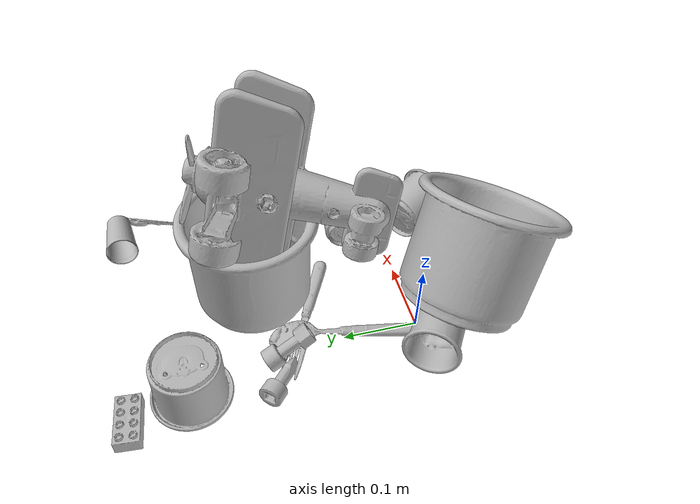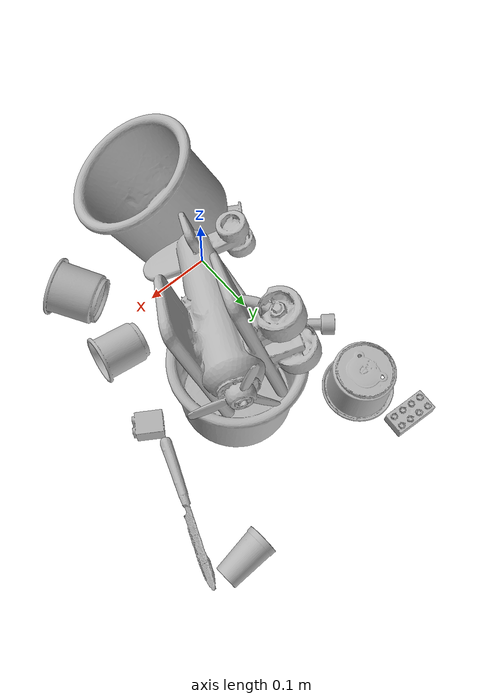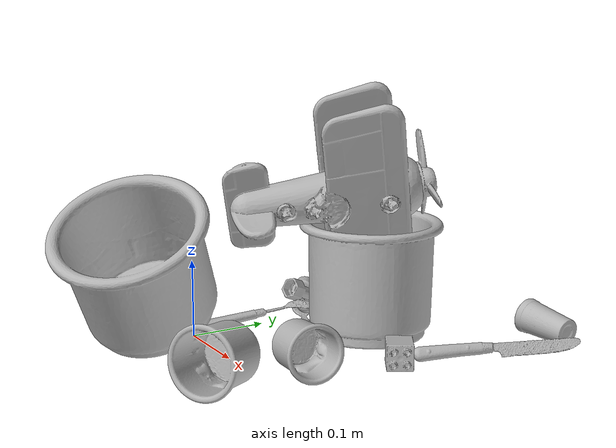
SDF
<sdf version="1.4">
  <world name="default">
    <light name="light1" type="point">
      <pose>0 0 1 0 0 0</pose>
      <diffuse>3 3 3 1</diffuse>
      <specular>3 3 3 1</specular>
    </light>
    <light name="light2" type="point">
      <pose>0 0.5 2 0 0 0</pose>
      <diffuse>1 1 1 1</diffuse>
      <specular>1 1 1 1</specular>
    </light>
    <light name="light3" type="point">
      <pose>0 0.5 2 0 0 0</pose>
      <diffuse>3 3 3 1</diffuse>
      <specular>3 3 3 1</specular>
    </light>
    <scene>
      <ambient>0.7 0.7 0.7</ambient>
    </scene>
    <model name="cup1">
      <link name="link_cup1">
        <collision name="default">
          <geometry>
            <mesh>
              <uri>model://d_cups/collision_meshes/collision.obj</uri>
              <scale>1.0 1.0 1.0</scale>
            </mesh>
          </geometry>
          <surface>
            <friction>
              <ode>
                <mu>0.5</mu>
                <mu2>0.5</mu2>
              </ode>
            </friction>
          <contact>
        <ode>
            <max_vel>0</max_vel>
            <min_depth>0.0001</min_depth>
            <kp>1e8</kp>
        </ode>
    </contact></surface>
        </collision>
        <visual name="default">
          <geometry>
            <mesh>
              <uri>model://d_cups/visual_meshes/visual.dae</uri>
              <scale>1.0 1.0 1.0</scale>
            </mesh>
          </geometry>
        </visual>
        <inertial>
          <mass>0.02583918906748295</mass>
          <pose>0.0008068039314821362 0.001911739120259881 -0.0022666507866233587 0.24011637128749466 -0.2471028358176743 0.5942765290496752</pose>
          <inertia>
            <ixx>2.1633481e-05</ixx>
            <iyy>2.1570875e-05</iyy>
            <izz>1.9581978e-05</izz>
            <ixy>0</ixy>
            <ixz>0</ixz>
            <iyz>0</iyz>
          </inertia>
        </inertial>
      </link>
      <pose>0.19284497201442719 0.05004005506634712 0.03246481716632843 -1.4725912006257997 0.45996634494934435 -1.6507713644012336</pose>
    </model>
    <model name="silverware1">
      <link name="link_silverware1">
        <collision name="default">
          <geometry>
            <mesh>
              <uri>model://fork/collision_meshes/collision.obj</uri>
              <scale>1.0 1.0 1.0</scale>
            </mesh>
          </geometry>
          <surface>
            <friction>
              <ode>
                <mu>0.5</mu>
                <mu2>0.5</mu2>
              </ode>
            </friction>
          <contact>
        <ode>
            <max_vel>0</max_vel>
            <min_depth>0.0001</min_depth>
            <kp>1e8</kp>
        </ode>
    </contact></surface>
        </collision>
        <visual name="default">
          <geometry>
            <mesh>
              <uri>model://fork/visual_meshes/visual.dae</uri>
              <scale>1.0 1.0 1.0</scale>
            </mesh>
          </geometry>
        </visual>
        <inertial>
          <mass>0.019409121945500374</mass>
          <pose>-0.02957003004848957 0.00046588227269239724 0.0003218860365450382 -0.013551247621251511 -0.010977829980421018 0.014453895491116085</pose>
          <inertia>
            <ixx>6.8039935e-07</ixx>
            <iyy>5.0671635e-05</iyy>
            <izz>5.097597e-05</izz>
            <ixy>0</ixy>
            <ixz>0</ixz>
            <iyz>0</iyz>
          </inertia>
        </inertial>
      </link>
      <pose>0.044082701206207275 0.14217828214168549 0.007446238771080971 -3.0641744674755182 0.0027995954546851816 2.688582010837622</pose>
    </model>
    <model name="cup2">
      <link name="link_cup2">
        <collision name="default">
          <geometry>
            <mesh>
              <uri>model://e_cups/collision_meshes/collision.obj</uri>
              <scale>1.0 1.0 1.0</scale>
            </mesh>
          </geometry>
          <surface>
            <friction>
              <ode>
                <mu>0.5</mu>
                <mu2>0.5</mu2>
              </ode>
            </friction>
          <contact>
        <ode>
            <max_vel>0</max_vel>
            <min_depth>0.0001</min_depth>
            <kp>1e8</kp>
        </ode>
    </contact></surface>
        </collision>
        <visual name="default">
          <geometry>
            <mesh>
              <uri>model://e_cups/visual_meshes/visual.dae</uri>
              <scale>1.0 1.0 1.0</scale>
            </mesh>
          </geometry>
        </visual>
        <inertial>
          <mass>0.044056184589862823</mass>
          <pose>0.0011355748865753412 0.0028797839768230915 -0.0038829699624329805 0.6952404811842238 0.0876797234541652 -0.5235249298074676</pose>
          <inertia>
            <ixx>3.8846523e-05</ixx>
            <iyy>4.060018e-05</iyy>
            <izz>3.714177e-05</izz>
            <ixy>0</ixy>
            <ixz>0</ixz>
            <iyz>0</iyz>
          </inertia>
        </inertial>
      </link>
      <pose>-0.04573681578040123 -0.009021404199302197 0.03495083004236221 -1.1342371935651374 1.3562522821534169 1.4079590836160691</pose>
    </model>
    <model name="silverware2">
      <link name="link_silverware2">
        <collision name="default">
          <geometry>
            <mesh>
              <uri>model://knife/collision_meshes/collision.obj</uri>
              <scale>1.0 1.0 1.0</scale>
            </mesh>
          </geometry>
          <surface>
            <friction>
              <ode>
                <mu>0.5</mu>
                <mu2>0.5</mu2>
              </ode>
            </friction>
          <contact>
        <ode>
            <max_vel>0</max_vel>
            <min_depth>0.0001</min_depth>
            <kp>1e8</kp>
        </ode>
    </contact></surface>
        </collision>
        <visual name="default">
          <geometry>
            <mesh>
              <uri>model://knife/visual_meshes/visual.dae</uri>
              <scale>1.0 1.0 1.0</scale>
            </mesh>
          </geometry>
        </visual>
        <inertial>
          <mass>0.018338654190301895</mass>
          <pose>-0.02378525212407112 0.00152751209679991 5.062017953605391e-05 0.07305878484845407 0.017248414361503102 -0.007409825003193847</pose>
          <inertia>
            <ixx>5.2052525e-07</ixx>
            <iyy>7.045415e-05</iyy>
            <izz>7.062178e-05</izz>
            <ixy>0</ixy>
            <ixz>0</ixz>
            <iyz>0</iyz>
          </inertia>
        </inertial>
      </link>
      <pose>0.2605878710746765 0.285221129655838 0.008410957641899586 0.9011111339972787 -0.010236267915574164 1.2012889031997314</pose>
    </model>
    <model name="cup3">
      <link name="link_cup3">
        <collision name="default">
          <geometry>
            <mesh>
              <uri>model://g_cups/collision_meshes/collision.obj</uri>
              <scale>1.0 1.0 1.0</scale>
            </mesh>
          </geometry>
          <surface>
            <friction>
              <ode>
                <mu>0.5</mu>
                <mu2>0.5</mu2>
              </ode>
            </friction>
          <contact>
        <ode>
            <max_vel>0</max_vel>
            <min_depth>0.0001</min_depth>
            <kp>1e8</kp>
        </ode>
    </contact></surface>
        </collision>
        <visual name="default">
          <geometry>
            <mesh>
              <uri>model://g_cups/visual_meshes/visual.dae</uri>
              <scale>1.0 1.0 1.0</scale>
            </mesh>
          </geometry>
        </visual>
        <inertial>
          <mass>0.07798270881175995</mass>
          <pose>-0.0007946274126879871 -4.206407902529463e-05 -0.0021329382434487343 -0.21383467808934026 -0.31409923984197585 0.31123390815877217</pose>
          <inertia>
            <ixx>9.102333e-05</ixx>
            <iyy>9.0713715e-05</iyy>
            <izz>9.428446e-05</izz>
            <ixy>0</ixy>
            <ixz>0</ixz>
            <iyz>0</iyz>
          </inertia>
        </inertial>
      </link>
      <pose>0.1868080049753189 -0.058096397668123245 0.03984779492020607 -0.9290708831182399 -1.3955844472314036 3.072186716912401</pose>
    </model>
    <model name="silverware3">
      <link name="link_silverware3">
        <collision name="default">
          <geometry>
            <mesh>
              <uri>model://spoon/collision_meshes/collision.obj</uri>
              <scale>1.0 1.0 1.0</scale>
            </mesh>
          </geometry>
          <surface>
            <friction>
              <ode>
                <mu>0.5</mu>
                <mu2>0.5</mu2>
              </ode>
            </friction>
          <contact>
        <ode>
            <max_vel>0</max_vel>
            <min_depth>0.0001</min_depth>
            <kp>1e8</kp>
        </ode>
    </contact></surface>
        </collision>
        <visual name="default">
          <geometry>
            <mesh>
              <uri>model://spoon/visual_meshes/visual.dae</uri>
              <scale>1.0 1.0 1.0</scale>
            </mesh>
          </geometry>
        </visual>
        <inertial>
          <mass>0.03767607361078262</mass>
          <pose>-0.005526314023882151 -0.00160341733135283 -0.0007271650829352438 0.035216427360727776 -0.03906582911385382 0.006150613897789847</pose>
          <inertia>
            <ixx>2.095604e-06</ixx>
            <iyy>0.00014335623</iyy>
            <izz>0.00014438969</izz>
            <ixy>0</ixy>
            <ixz>0</ixz>
            <iyz>0</iyz>
          </inertia>
        </inertial>
      </link>
      <pose>0.00219451985321939 0.10263587534427643 0.012708013877272606 3.09637484218974 -0.09002945027949363 1.435232481163786</pose>
    </model>
    <model name="cup4">
      <link name="link_cup4">
        <collision name="default">
          <geometry>
            <mesh>
              <uri>model://i_cups/collision_meshes/collision.obj</uri>
              <scale>2.0 2.0 2.0</scale>
            </mesh>
          </geometry>
          <surface>
            <friction>
              <ode>
                <mu>0.5</mu>
                <mu2>0.5</mu2>
              </ode>
            </friction>
          <contact>
        <ode>
            <max_vel>0</max_vel>
            <min_depth>0.0001</min_depth>
            <kp>1e8</kp>
        </ode>
    </contact></surface>
        </collision>
        <visual name="default">
          <geometry>
            <mesh>
              <uri>model://i_cups/visual_meshes/visual.dae</uri>
              <scale>2.0 2.0 2.0</scale>
            </mesh>
          </geometry>
        </visual>
        <inertial>
          <mass>0.5538490414619446</mass>
          <pose>0.00022480632469523698 0.00033594807609915733 -0.0017158057307824492 -0.028982964625507153 -0.039873324075769 -0.3459146585522926</pose>
          <inertia>
            <ixx>0.003067248</ixx>
            <iyy>0.003094273</iyy>
            <izz>0.0034281453</izz>
            <ixy>0</ixy>
            <ixz>0</ixz>
            <iyz>0</iyz>
          </inertia>
        </inertial>
      </link>
      <pose>0.018026268109679222 -0.07648338377475739 0.10166434198617935 0.47979749630349633 -0.2162349199642782 1.1334081734131785</pose>
    </model>
    <model name="cup41">
      <link name="link_cup41">
        <collision name="default">
          <geometry>
            <mesh>
              <uri>model://cup_small/collision_meshes/collision.obj</uri>
              <scale>1.0 1.0 1.0</scale>
            </mesh>
          </geometry>
          <surface>
            <friction>
              <ode>
                <mu>0.5</mu>
                <mu2>0.5</mu2>
              </ode>
            </friction>
          <contact>
        <ode>
            <max_vel>0</max_vel>
            <min_depth>0.0001</min_depth>
            <kp>1e8</kp>
        </ode>
    </contact></surface>
        </collision>
        <visual name="default">
          <geometry>
            <mesh>
              <uri>model://cup_small/visual_meshes/visual.dae</uri>
              <scale>1.0 1.0 1.0</scale>
            </mesh>
          </geometry>
        </visual>
        <inertial>
          <mass>0.014494861476123333</mass>
          <pose>0.000104824714071583 -0.0003377838584128767 -0.010742826387286186 -0.01149312034772668 -0.015280288652376739 -0.5058210166411498</pose>
          <inertia>
            <ixx>8.534352e-06</ixx>
            <iyy>8.578376e-06</iyy>
            <izz>3.853286e-06</izz>
            <ixy>0</ixy>
            <ixz>0</ixz>
            <iyz>0</iyz>
          </inertia>
        </inertial>
      </link>
      <pose>0.2433362752199173 0.3817695379257202 0.019850632175803185 -1.4787934197550325 -0.29150203578495226 1.6252223862628825</pose>
    </model>
    <model name="cup5">
      <link name="link_cup5">
        <collision name="default">
          <geometry>
            <mesh>
              <uri>model://h_cups/collision_meshes/collision.obj</uri>
              <scale>2.0 2.0 2.0</scale>
            </mesh>
          </geometry>
          <surface>
            <friction>
              <ode>
                <mu>0.5</mu>
                <mu2>0.5</mu2>
              </ode>
            </friction>
          <contact>
        <ode>
            <max_vel>0</max_vel>
            <min_depth>0.0001</min_depth>
            <kp>1e8</kp>
        </ode>
    </contact></surface>
        </collision>
        <visual name="default">
          <geometry>
            <mesh>
              <uri>model://h_cups/visual_meshes/visual.dae</uri>
              <scale>2.0 2.0 2.0</scale>
            </mesh>
          </geometry>
        </visual>
        <inertial>
          <mass>0.5365790128707886</mass>
          <pose>-5.406028139987029e-05 0.00046037189895287156 -0.0036810787860304117 -0.02436222281077587 0.06545240855648493 0.12885003891433794</pose>
          <inertia>
            <ixx>0.002771868</ixx>
            <iyy>0.0027387904</iyy>
            <izz>0.0029069292</izz>
            <ixy>0</ixy>
            <ixz>0</ixz>
            <iyz>0</iyz>
          </inertia>
        </inertial>
      </link>
      <pose>0.10465098917484283 0.20305652916431427 0.0755201056599617 0.00010390836142231411 -9.331201529589868e-06 1.4032554315963457</pose>
    </model>
    <model name="cup51">
      <link name="link_cup51">
        <collision name="default">
          <geometry>
            <mesh>
              <uri>model://j_cups/collision_meshes/collision.obj</uri>
              <scale>1.0 1.0 1.0</scale>
            </mesh>
          </geometry>
          <surface>
            <friction>
              <ode>
                <mu>0.5</mu>
                <mu2>0.5</mu2>
              </ode>
            </friction>
          <contact>
        <ode>
            <max_vel>0</max_vel>
            <min_depth>0.0001</min_depth>
            <kp>1e8</kp>
        </ode>
    </contact></surface>
        </collision>
        <visual name="default">
          <geometry>
            <mesh>
              <uri>model://j_cups/visual_meshes/visual.dae</uri>
              <scale>1.0 1.0 1.0</scale>
            </mesh>
          </geometry>
        </visual>
        <inertial>
          <mass>0.08643309026956558</mass>
          <pose>0.0006164878141134977 0.000539897009730339 -0.0013479007175192237 0.030303582878034346 0.03757999590477698 0.4386876701083768</pose>
          <inertia>
            <ixx>0.00012691108</ixx>
            <iyy>0.00012823076</iyy>
            <izz>0.00014630218</izz>
            <ixy>0</ixy>
            <ixz>0</ixz>
            <iyz>0</iyz>
          </inertia>
        </inertial>
      </link>
      <pose>-0.03770799562335014 0.30502691864967346 0.0379977785050869 -3.139854856125243 0.006371811609458145 1.4302749411431372</pose>
    </model>
    <model name="toy1">
      <link name="link_toy1">
        <collision name="default">
          <geometry>
            <mesh>
              <uri>model://f_lego_duplo/collision_meshes/collision.obj</uri>
              <scale>1.0 1.0 1.0</scale>
            </mesh>
          </geometry>
          <surface>
            <friction>
              <ode>
                <mu>0.5</mu>
                <mu2>0.5</mu2>
              </ode>
            </friction>
          <contact>
        <ode>
            <max_vel>0</max_vel>
            <min_depth>0.0001</min_depth>
            <kp>1e8</kp>
        </ode>
    </contact></surface>
        </collision>
        <visual name="default">
          <geometry>
            <mesh>
              <uri>model://f_lego_duplo/visual_meshes/visual.dae</uri>
              <scale>1.0 1.0 1.0</scale>
            </mesh>
          </geometry>
        </visual>
        <inertial>
          <mass>0.03726755082607269</mass>
          <pose>2.3694148694630712e-05 0.00013393144763540477 0.0018837880343198776 0.029838475432906467 -0.014425202105620092 -0.6756589304715467</pose>
          <inertia>
            <ixx>7.874838e-06</ixx>
            <iyy>7.944995e-06</iyy>
            <izz>6.8356926e-06</izz>
            <ixy>0</ixy>
            <ixz>0</ixz>
            <iyz>0</iyz>
          </inertia>
        </inertial>
      </link>
      <pose>0.22861172258853912 0.15979862213134766 0.016202902421355247 1.6846399029020627 1.5707523854111967 1.1126268575606157</pose>
    </model>
    <model name="toy2">
      <link name="link_toy2">
        <collision name="default">
          <geometry>
            <mesh>
              <uri>model://a_toy_airplane/collision_meshes/collision.obj</uri>
              <scale>1.0 1.0 1.0</scale>
            </mesh>
          </geometry>
          <surface>
            <friction>
              <ode>
                <mu>0.5</mu>
                <mu2>0.5</mu2>
              </ode>
            </friction>
          <contact>
        <ode>
            <max_vel>0</max_vel>
            <min_depth>0.0001</min_depth>
            <kp>1e8</kp>
        </ode>
    </contact></surface>
        </collision>
        <visual name="default">
          <geometry>
            <mesh>
              <uri>model://a_toy_airplane/visual_meshes/visual.dae</uri>
              <scale>1.0 1.0 1.0</scale>
            </mesh>
          </geometry>
        </visual>
        <inertial>
          <mass>2.8230273723602295</mass>
          <pose>0.025165094062685966 -0.003707324154675007 -0.0011962448479607701 -0.012016973205606891 -0.14663498091084715 0.004149146833454428</pose>
          <inertia>
            <ixx>0.010251767</ixx>
            <iyy>0.014938904</iyy>
            <izz>0.017491622</izz>
            <ixy>0</ixy>
            <ixz>0</ixz>
            <iyz>0</iyz>
          </inertia>
        </inertial>
      </link>
      <pose>0.0937383770942688 0.14794659614562988 0.1893801987171173 1.7998259791620572 -0.17599418381462428 1.3154819840908323</pose>
    </model>
    <model name="toy3">
      <link name="link_toy3">
        <collision name="default">
          <geometry>
            <mesh>
              <uri>model://e_toy_airplane/collision_meshes/collision.obj</uri>
              <scale>1.0 1.0 1.0</scale>
            </mesh>
          </geometry>
          <surface>
            <friction>
              <ode>
                <mu>0.5</mu>
                <mu2>0.5</mu2>
              </ode>
            </friction>
          <contact>
        <ode>
            <max_vel>0</max_vel>
            <min_depth>0.0001</min_depth>
            <kp>1e8</kp>
        </ode>
    </contact></surface>
        </collision>
        <visual name="default">
          <geometry>
            <mesh>
              <uri>model://e_toy_airplane/visual_meshes/visual.dae</uri>
              <scale>1.0 1.0 1.0</scale>
            </mesh>
          </geometry>
        </visual>
        <inertial>
          <mass>0.018226178362965584</mass>
          <pose>0.00011740501213353127 -2.2482903659692965e-05 -0.011187204159796238 0.005518473613481416 0.009228340672948143 0.1504115676354622</pose>
          <inertia>
            <ixx>5.5628384e-06</ixx>
            <iyy>5.505933e-06</iyy>
            <izz>1.6718515e-06</izz>
            <ixy>0</ixy>
            <ixz>0</ixz>
            <iyz>0</iyz>
          </inertia>
        </inertial>
      </link>
      <pose>-0.05086467042565346 0.19258780777454376 0.014332378283143044 1.628346024808428 0.3856811236363285 0.8662193699196328</pose>
    </model>
    <model name="toy4">
      <link name="link_toy4">
        <collision name="default">
          <geometry>
            <mesh>
              <uri>model://c_toy_airplane/collision_meshes/collision.obj</uri>
              <scale>1.0 1.0 1.0</scale>
            </mesh>
          </geometry>
          <surface>
            <friction>
              <ode>
                <mu>0.5</mu>
                <mu2>0.5</mu2>
              </ode>
            </friction>
          <contact>
        <ode>
            <max_vel>0</max_vel>
            <min_depth>0.0001</min_depth>
            <kp>1e8</kp>
        </ode>
    </contact></surface>
        </collision>
        <visual name="default">
          <geometry>
            <mesh>
              <uri>model://c_toy_airplane/visual_meshes/visual.dae</uri>
              <scale>1.0 1.0 1.0</scale>
            </mesh>
          </geometry>
        </visual>
        <inertial>
          <mass>0.025432955473661423</mass>
          <pose>-0.00023024249821901321 -4.429159048413567e-07 -0.006080531049519777 -0.006192114712999555 -0.016797950833505656 0.7654545807195076</pose>
          <inertia>
            <ixx>1.1678292e-05</ixx>
            <iyy>1.1645335e-05</iyy>
            <izz>2.7418316e-06</izz>
            <ixy>0</ixy>
            <ixz>0</ixz>
            <iyz>0</iyz>
          </inertia>
        </inertial>
      </link>
      <pose>-0.015591326169669628 0.17806458473205566 0.027298185974359512 -0.20099263343884172 -1.1423103234241263 2.021292477145407</pose>
    </model>
    <model name="toy5">
      <link name="link_toy5">
        <collision name="default">
          <geometry>
            <mesh>
              <uri>model://c_lego_duplo/collision_meshes/collision.obj</uri>
              <scale>1.0 1.0 1.0</scale>
            </mesh>
          </geometry>
          <surface>
            <friction>
              <ode>
                <mu>0.5</mu>
                <mu2>0.5</mu2>
              </ode>
            </friction>
          <contact>
        <ode>
            <max_vel>0</max_vel>
            <min_depth>0.0001</min_depth>
            <kp>1e8</kp>
        </ode>
    </contact></surface>
        </collision>
        <visual name="default">
          <geometry>
            <mesh>
              <uri>model://c_lego_duplo/visual_meshes/visual.dae</uri>
              <scale>1.0 1.0 1.0</scale>
            </mesh>
          </geometry>
        </visual>
        <inertial>
          <mass>0.03308485820889473</mass>
          <pose>0.00031645988929085433 0.00019464598153717816 0.0010453154100105166 -0.011520788894510418 0.005900092683279709 0.031100331745055027</pose>
          <inertia>
            <ixx>1.2731672e-05</ixx>
            <iyy>4.066954e-06</iyy>
            <izz>1.4878268e-05</izz>
            <ixy>0</ixy>
            <ixz>0</ixz>
            <iyz>0</iyz>
          </inertia>
        </inertial>
      </link>
      <pose>-0.06334453076124191 0.38109931349754333 0.011981489136815071 0.008019384344604976 -0.0020914008259806153 1.4719026011893184</pose>
    </model>
  <physics type="ode">
      <max_contacts>50</max_contacts>
      <ode>
        <solver>
          <type>quick</type>
          <iters>75</iters>
        </solver>
        <constraints>
          <contact_max_correcting_vel>0</contact_max_correcting_vel>
          <contact_surface_layer>0</contact_surface_layer>
        </constraints>
      </ode>
    </physics></world>
</sdf>
